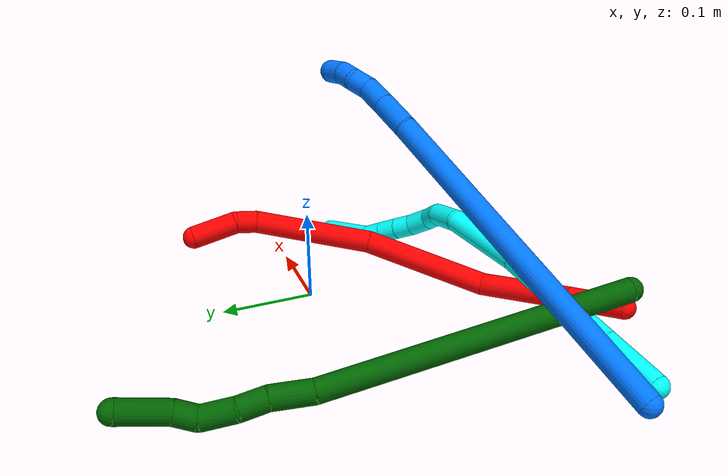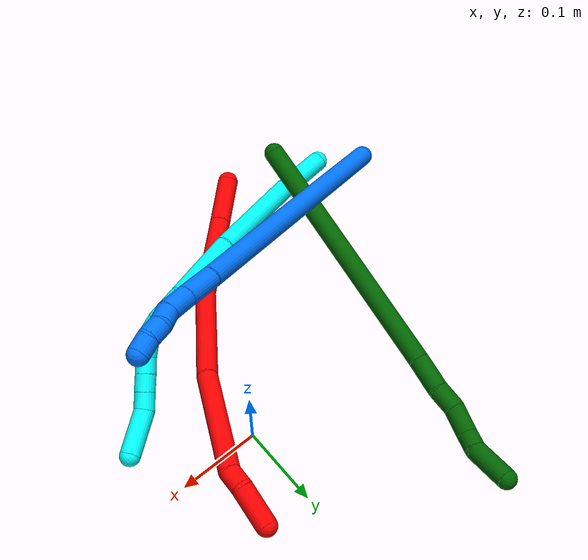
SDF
<sdf version="1.7">
 <world name="default">
  <model name="2">
   <static>0</static>
   <link name="2">
    <collision name="collision-cylinder-e_1_1_4">
     <pose>0.017904 0.017554 0.016582 -0.813855 0.637984 -0.282783</pose>
     <geometry><cylinder><radius>0.0125</radius><length>0.060122</length></cylinder></geometry>
     <surface>
      <friction><ode><mu>1.16</mu><mu2>1.16</mu2><slip1>0</slip1><slip2>0</slip2></ode></friction>
      <contact><ode><kp>1e+06</kp><kd>1</kd><max_vel>0</max_vel><min_depth>0.001</min_depth></ode></contact>
     </surface>
    </collision>
    <visual name="visual-cylinder-e_1_1_4">
     <pose>0.017904 0.017554 0.016582 -0.813855 0.637984 -0.282783</pose>
     <geometry><cylinder><radius>0.0125</radius><length>0.060122</length></cylinder></geometry>
     <material><ambient>1 0 0 1</ambient></material>
    </visual>
    <collision name="collision-cylinder-e_2_4_5">
     <pose>0.064543 0.064239 0.061764 -0.794617 0.613343 -0.26421</pose>
     <geometry><cylinder><radius>0.0125</radius><length>0.099844</length></cylinder></geometry>
     <surface>
      <friction><ode><mu>1.16</mu><mu2>1.16</mu2><slip1>0</slip1><slip2>0</slip2></ode></friction>
      <contact><ode><kp>1e+06</kp><kd>1</kd><max_vel>0</max_vel><min_depth>0.001</min_depth></ode></contact>
     </surface>
    </collision>
    <visual name="visual-cylinder-e_2_4_5">
     <pose>0.064543 0.064239 0.061764 -0.794617 0.613343 -0.26421</pose>
     <geometry><cylinder><radius>0.0125</radius><length>0.099844</length></cylinder></geometry>
     <material><ambient>1 0 0 1</ambient></material>
    </visual>
    <collision name="collision-cylinder-e_3_5_6">
     <pose>0.148338 0.13157 0.105333 -1.1973 0.930391 -0.659773</pose>
     <geometry><cylinder><radius>0.0125</radius><length>0.13733</length></cylinder></geometry>
     <surface>
      <friction><ode><mu>1.16</mu><mu2>1.16</mu2><slip1>0</slip1><slip2>0</slip2></ode></friction>
      <contact><ode><kp>1e+06</kp><kd>1</kd><max_vel>0</max_vel><min_depth>0.001</min_depth></ode></contact>
     </surface>
    </collision>
    <visual name="visual-cylinder-e_3_5_6">
     <pose>0.148338 0.13157 0.105333 -1.1973 0.930391 -0.659773</pose>
     <geometry><cylinder><radius>0.0125</radius><length>0.13733</length></cylinder></geometry>
     <material><ambient>1 0 0 1</ambient></material>
    </visual>
    <collision name="collision-cylinder-e_4_6_7">
     <pose>0.260349 0.194905 0.13913 -0.927907 1.06688 -0.574645</pose>
     <geometry><cylinder><radius>0.0125</radius><length>0.130073</length></cylinder></geometry>
     <surface>
      <friction><ode><mu>1.16</mu><mu2>1.16</mu2><slip1>0</slip1><slip2>0</slip2></ode></friction>
      <contact><ode><kp>1e+06</kp><kd>1</kd><max_vel>0</max_vel><min_depth>0.001</min_depth></ode></contact>
     </surface>
    </collision>
    <visual name="visual-cylinder-e_4_6_7">
     <pose>0.260349 0.194905 0.13913 -0.927907 1.06688 -0.574645</pose>
     <geometry><cylinder><radius>0.0125</radius><length>0.130073</length></cylinder></geometry>
     <material><ambient>1 0 0 1</ambient></material>
    </visual>
    <collision name="collision-cylinder-e_5_7_8">
     <pose>0.328868 0.22028 0.160271 -0.103925 1.37231 -0.085129</pose>
     <geometry><cylinder><radius>0.0125</radius><length>0.023595</length></cylinder></geometry>
     <surface>
      <friction><ode><mu>1.16</mu><mu2>1.16</mu2><slip1>0</slip1><slip2>0</slip2></ode></friction>
      <contact><ode><kp>1e+06</kp><kd>1</kd><max_vel>0</max_vel><min_depth>0.001</min_depth></ode></contact>
     </surface>
    </collision>
    <visual name="visual-cylinder-e_5_7_8">
     <pose>0.328868 0.22028 0.160271 -0.103925 1.37231 -0.085129</pose>
     <geometry><cylinder><radius>0.0125</radius><length>0.023595</length></cylinder></geometry>
     <material><ambient>1 0 0 1</ambient></material>
    </visual>
    <collision name="collision-cylinder-e_6_8_2">
     <pose>0.361342 0.217957 0.17513 0.201649 1.02128 0.113226</pose>
     <geometry><cylinder><radius>0.0125</radius><length>0.049035</length></cylinder></geometry>
     <surface>
      <friction><ode><mu>1.16</mu><mu2>1.16</mu2><slip1>0</slip1><slip2>0</slip2></ode></friction>
      <contact><ode><kp>1e+06</kp><kd>1</kd><max_vel>0</max_vel><min_depth>0.001</min_depth></ode></contact>
     </surface>
    </collision>
    <visual name="visual-cylinder-e_6_8_2">
     <pose>0.361342 0.217957 0.17513 0.201649 1.02128 0.113226</pose>
     <geometry><cylinder><radius>0.0125</radius><length>0.049035</length></cylinder></geometry>
     <material><ambient>1 0 0 1</ambient></material>
    </visual>
    <collision name="collision-sphere-2">
     <pose>0.382249 0.215392 0.187675 0 -0 0</pose>
     <geometry><sphere><radius>0.0125</radius></sphere></geometry>
     <surface>
      <friction><ode><mu>1.16</mu><mu2>1.16</mu2><slip1>0</slip1><slip2>0</slip2></ode></friction>
      <contact><ode><kp>1e+06</kp><kd>1</kd><max_vel>0</max_vel><min_depth>0.001</min_depth></ode></contact>
     </surface>
    </collision>
    <visual name="visual-sphere-2">
     <pose>0.382249 0.215392 0.187675 0 -0 0</pose>
     <geometry><sphere><radius>0.0125</radius></sphere></geometry>
     <material><ambient>1 0 0 1</ambient></material>
    </visual>
    <collision name="collision-sphere-4">
     <pose>0.035807 0.035108 0.033165 0 -0 0</pose>
     <geometry><sphere><radius>0.0125</radius></sphere></geometry>
     <surface>
      <friction><ode><mu>1.16</mu><mu2>1.16</mu2><slip1>0</slip1><slip2>0</slip2></ode></friction>
      <contact><ode><kp>1e+06</kp><kd>1</kd><max_vel>0</max_vel><min_depth>0.001</min_depth></ode></contact>
     </surface>
    </collision>
    <visual name="visual-sphere-4">
     <pose>0.035807 0.035108 0.033165 0 -0 0</pose>
     <geometry><sphere><radius>0.0125</radius></sphere></geometry>
     <material><ambient>1 0 0 1</ambient></material>
    </visual>
    <collision name="collision-sphere-1">
     <geometry><sphere><radius>0.0125</radius></sphere></geometry>
     <surface>
      <friction><ode><mu>1.16</mu><mu2>1.16</mu2><slip1>0</slip1><slip2>0</slip2></ode></friction>
      <contact><ode><kp>1e+06</kp><kd>1</kd><max_vel>0</max_vel><min_depth>0.001</min_depth></ode></contact>
     </surface>
    </collision>
    <visual name="visual-sphere-1">
     <geometry><sphere><radius>0.0125</radius></sphere></geometry>
     <material><ambient>1 0 0 1</ambient></material>
    </visual>
    <collision name="collision-sphere-8">
     <pose>0.340434 0.220522 0.162584 0 -0 0</pose>
     <geometry><sphere><radius>0.0125</radius></sphere></geometry>
     <surface>
      <friction><ode><mu>1.16</mu><mu2>1.16</mu2><slip1>0</slip1><slip2>0</slip2></ode></friction>
      <contact><ode><kp>1e+06</kp><kd>1</kd><max_vel>0</max_vel><min_depth>0.001</min_depth></ode></contact>
     </surface>
    </collision>
    <visual name="visual-sphere-8">
     <pose>0.340434 0.220522 0.162584 0 -0 0</pose>
     <geometry><sphere><radius>0.0125</radius></sphere></geometry>
     <material><ambient>1 0 0 1</ambient></material>
    </visual>
    <collision name="collision-sphere-5">
     <pose>0.093278 0.09337 0.090362 0 -0 0</pose>
     <geometry><sphere><radius>0.0125</radius></sphere></geometry>
     <surface>
      <friction><ode><mu>1.16</mu><mu2>1.16</mu2><slip1>0</slip1><slip2>0</slip2></ode></friction>
      <contact><ode><kp>1e+06</kp><kd>1</kd><max_vel>0</max_vel><min_depth>0.001</min_depth></ode></contact>
     </surface>
    </collision>
    <visual name="visual-sphere-5">
     <pose>0.093278 0.09337 0.090362 0 -0 0</pose>
     <geometry><sphere><radius>0.0125</radius></sphere></geometry>
     <material><ambient>1 0 0 1</ambient></material>
    </visual>
    <collision name="collision-sphere-6">
     <pose>0.203397 0.169771 0.120303 0 -0 0</pose>
     <geometry><sphere><radius>0.0125</radius></sphere></geometry>
     <surface>
      <friction><ode><mu>1.16</mu><mu2>1.16</mu2><slip1>0</slip1><slip2>0</slip2></ode></friction>
      <contact><ode><kp>1e+06</kp><kd>1</kd><max_vel>0</max_vel><min_depth>0.001</min_depth></ode></contact>
     </surface>
    </collision>
    <visual name="visual-sphere-6">
     <pose>0.203397 0.169771 0.120303 0 -0 0</pose>
     <geometry><sphere><radius>0.0125</radius></sphere></geometry>
     <material><ambient>1 0 0 1</ambient></material>
    </visual>
    <collision name="collision-sphere-7">
     <pose>0.317302 0.220039 0.157957 0 -0 0</pose>
     <geometry><sphere><radius>0.0125</radius></sphere></geometry>
     <surface>
      <friction><ode><mu>1.16</mu><mu2>1.16</mu2><slip1>0</slip1><slip2>0</slip2></ode></friction>
      <contact><ode><kp>1e+06</kp><kd>1</kd><max_vel>0</max_vel><min_depth>0.001</min_depth></ode></contact>
     </surface>
    </collision>
    <visual name="visual-sphere-7">
     <pose>0.317302 0.220039 0.157957 0 -0 0</pose>
     <geometry><sphere><radius>0.0125</radius></sphere></geometry>
     <material><ambient>1 0 0 1</ambient></material>
    </visual>
    <inertial>
     <pose>0.174469 0.13355 0.104191 0 -0 0</pose>
     <mass>0.5</mass>
     <inertia>
      <ixx>0.000149</ixx>
      <ixy>0</ixy>
      <ixz>0</ixz>
      <iyy>0.000293</iyy>
      <iyz>0</iyz>
      <izz>-0.000659</izz>
     </inertia>
    </inertial>
   </link>
   <pose>-0.189249 -0.287271 0.023207 2.67477 -0.284861 1.62058</pose>
  </model>
  <model name="3">
   <static>0</static>
   <link name="3">
    <collision name="collision-cylinder-e_1_1_4">
     <pose>0.031557 0.009699 0.00982 -0.779204 1.15847 -0.524733</pose>
     <geometry><cylinder><radius>0.0125</radius><length>0.068887</length></cylinder></geometry>
     <surface>
      <friction><ode><mu>1.16</mu><mu2>1.16</mu2><slip1>0</slip1><slip2>0</slip2></ode></friction>
      <contact><ode><kp>1e+06</kp><kd>1</kd><max_vel>0</max_vel><min_depth>0.001</min_depth></ode></contact>
     </surface>
    </collision>
    <visual name="visual-cylinder-e_1_1_4">
     <pose>0.031557 0.009699 0.00982 -0.779204 1.15847 -0.524733</pose>
     <geometry><cylinder><radius>0.0125</radius><length>0.068887</length></cylinder></geometry>
     <material><ambient>0.003922 1 0.996078 1</ambient></material>
    </visual>
    <collision name="collision-cylinder-e_2_4_5">
     <pose>0.122053 0.047101 0.037172 -1.00657 1.06318 -0.626233</pose>
     <geometry><cylinder><radius>0.0125</radius><length>0.134886</length></cylinder></geometry>
     <surface>
      <friction><ode><mu>1.16</mu><mu2>1.16</mu2><slip1>0</slip1><slip2>0</slip2></ode></friction>
      <contact><ode><kp>1e+06</kp><kd>1</kd><max_vel>0</max_vel><min_depth>0.001</min_depth></ode></contact>
     </surface>
    </collision>
    <visual name="visual-cylinder-e_2_4_5">
     <pose>0.122053 0.047101 0.037172 -1.00657 1.06318 -0.626233</pose>
     <geometry><cylinder><radius>0.0125</radius><length>0.134886</length></cylinder></geometry>
     <material><ambient>0.003922 1 0.996078 1</ambient></material>
    </visual>
    <collision name="collision-cylinder-e_3_5_6">
     <pose>0.223697 0.088868 0.062576 -1.06055 1.20993 -0.77028</pose>
     <geometry><cylinder><radius>0.0125</radius><length>0.091292</length></cylinder></geometry>
     <surface>
      <friction><ode><mu>1.16</mu><mu2>1.16</mu2><slip1>0</slip1><slip2>0</slip2></ode></friction>
      <contact><ode><kp>1e+06</kp><kd>1</kd><max_vel>0</max_vel><min_depth>0.001</min_depth></ode></contact>
     </surface>
    </collision>
    <visual name="visual-cylinder-e_3_5_6">
     <pose>0.223697 0.088868 0.062576 -1.06055 1.20993 -0.77028</pose>
     <geometry><cylinder><radius>0.0125</radius><length>0.091292</length></cylinder></geometry>
     <material><ambient>0.003922 1 0.996078 1</ambient></material>
    </visual>
    <collision name="collision-cylinder-e_4_6_7">
     <pose>0.285206 0.102331 0.071845 0.405905 1.49005 0.375148</pose>
     <geometry><cylinder><radius>0.0125</radius><length>0.037728</length></cylinder></geometry>
     <surface>
      <friction><ode><mu>1.16</mu><mu2>1.16</mu2><slip1>0</slip1><slip2>0</slip2></ode></friction>
      <contact><ode><kp>1e+06</kp><kd>1</kd><max_vel>0</max_vel><min_depth>0.001</min_depth></ode></contact>
     </surface>
    </collision>
    <visual name="visual-cylinder-e_4_6_7">
     <pose>0.285206 0.102331 0.071845 0.405905 1.49005 0.375148</pose>
     <geometry><cylinder><radius>0.0125</radius><length>0.037728</length></cylinder></geometry>
     <material><ambient>0.003922 1 0.996078 1</ambient></material>
    </visual>
    <collision name="collision-cylinder-e_5_7_8">
     <pose>0.313624 0.098136 0.071054 2.11766 1.15823 1.72178</pose>
     <geometry><cylinder><radius>0.0125</radius><length>0.020993</length></cylinder></geometry>
     <surface>
      <friction><ode><mu>1.16</mu><mu2>1.16</mu2><slip1>0</slip1><slip2>0</slip2></ode></friction>
      <contact><ode><kp>1e+06</kp><kd>1</kd><max_vel>0</max_vel><min_depth>0.001</min_depth></ode></contact>
     </surface>
    </collision>
    <visual name="visual-cylinder-e_5_7_8">
     <pose>0.313624 0.098136 0.071054 2.11766 1.15823 1.72178</pose>
     <geometry><cylinder><radius>0.0125</radius><length>0.020993</length></cylinder></geometry>
     <material><ambient>0.003922 1 0.996078 1</ambient></material>
    </visual>
    <collision name="collision-cylinder-e_6_8_9">
     <pose>0.334978 0.094437 0.062027 3.12648 1.04319 3.11529</pose>
     <geometry><cylinder><radius>0.0125</radius><length>0.027169</length></cylinder></geometry>
     <surface>
      <friction><ode><mu>1.16</mu><mu2>1.16</mu2><slip1>0</slip1><slip2>0</slip2></ode></friction>
      <contact><ode><kp>1e+06</kp><kd>1</kd><max_vel>0</max_vel><min_depth>0.001</min_depth></ode></contact>
     </surface>
    </collision>
    <visual name="visual-cylinder-e_6_8_9">
     <pose>0.334978 0.094437 0.062027 3.12648 1.04319 3.11529</pose>
     <geometry><cylinder><radius>0.0125</radius><length>0.027169</length></cylinder></geometry>
     <material><ambient>0.003922 1 0.996078 1</ambient></material>
    </visual>
    <collision name="collision-cylinder-e_7_9_10">
     <pose>0.355011 0.096285 0.049523 -2.80991 0.945261 -2.50883</pose>
     <geometry><cylinder><radius>0.0125</radius><length>0.020468</length></cylinder></geometry>
     <surface>
      <friction><ode><mu>1.16</mu><mu2>1.16</mu2><slip1>0</slip1><slip2>0</slip2></ode></friction>
      <contact><ode><kp>1e+06</kp><kd>1</kd><max_vel>0</max_vel><min_depth>0.001</min_depth></ode></contact>
     </surface>
    </collision>
    <visual name="visual-cylinder-e_7_9_10">
     <pose>0.355011 0.096285 0.049523 -2.80991 0.945261 -2.50883</pose>
     <geometry><cylinder><radius>0.0125</radius><length>0.020468</length></cylinder></geometry>
     <material><ambient>0.003922 1 0.996078 1</ambient></material>
    </visual>
    <collision name="collision-cylinder-e_8_10_11">
     <pose>0.372062 0.099974 0.038146 -2.84633 0.972353 -2.59299</pose>
     <geometry><cylinder><radius>0.0125</radius><length>0.021194</length></cylinder></geometry>
     <surface>
      <friction><ode><mu>1.16</mu><mu2>1.16</mu2><slip1>0</slip1><slip2>0</slip2></ode></friction>
      <contact><ode><kp>1e+06</kp><kd>1</kd><max_vel>0</max_vel><min_depth>0.001</min_depth></ode></contact>
     </surface>
    </collision>
    <visual name="visual-cylinder-e_8_10_11">
     <pose>0.372062 0.099974 0.038146 -2.84633 0.972353 -2.59299</pose>
     <geometry><cylinder><radius>0.0125</radius><length>0.021194</length></cylinder></geometry>
     <material><ambient>0.003922 1 0.996078 1</ambient></material>
    </visual>
    <collision name="collision-cylinder-e_9_11_12">
     <pose>0.389412 0.103582 0.026383 -2.84175 0.935672 -2.56056</pose>
     <geometry><cylinder><radius>0.0125</radius><length>0.021353</length></cylinder></geometry>
     <surface>
      <friction><ode><mu>1.16</mu><mu2>1.16</mu2><slip1>0</slip1><slip2>0</slip2></ode></friction>
      <contact><ode><kp>1e+06</kp><kd>1</kd><max_vel>0</max_vel><min_depth>0.001</min_depth></ode></contact>
     </surface>
    </collision>
    <visual name="visual-cylinder-e_9_11_12">
     <pose>0.389412 0.103582 0.026383 -2.84175 0.935672 -2.56056</pose>
     <geometry><cylinder><radius>0.0125</radius><length>0.021353</length></cylinder></geometry>
     <material><ambient>0.003922 1 0.996078 1</ambient></material>
    </visual>
    <collision name="collision-cylinder-e_10_12_2">
     <pose>0.4238 0.114179 0.013744 -2.21741 1.16985 -1.85191</pose>
     <geometry><cylinder><radius>0.0125</radius><length>0.05603</length></cylinder></geometry>
     <surface>
      <friction><ode><mu>1.16</mu><mu2>1.16</mu2><slip1>0</slip1><slip2>0</slip2></ode></friction>
      <contact><ode><kp>1e+06</kp><kd>1</kd><max_vel>0</max_vel><min_depth>0.001</min_depth></ode></contact>
     </surface>
    </collision>
    <visual name="visual-cylinder-e_10_12_2">
     <pose>0.4238 0.114179 0.013744 -2.21741 1.16985 -1.85191</pose>
     <geometry><cylinder><radius>0.0125</radius><length>0.05603</length></cylinder></geometry>
     <material><ambient>0.003922 1 0.996078 1</ambient></material>
    </visual>
    <collision name="collision-sphere-2">
     <pose>0.449593 0.122906 0.007156 0 -0 0</pose>
     <geometry><sphere><radius>0.0125</radius></sphere></geometry>
     <surface>
      <friction><ode><mu>1.16</mu><mu2>1.16</mu2><slip1>0</slip1><slip2>0</slip2></ode></friction>
      <contact><ode><kp>1e+06</kp><kd>1</kd><max_vel>0</max_vel><min_depth>0.001</min_depth></ode></contact>
     </surface>
    </collision>
    <visual name="visual-sphere-2">
     <pose>0.449593 0.122906 0.007156 0 -0 0</pose>
     <geometry><sphere><radius>0.0125</radius></sphere></geometry>
     <material><ambient>0.003922 1 0.996078 1</ambient></material>
    </visual>
    <collision name="collision-sphere-12">
     <pose>0.398006 0.105453 0.020331 0 -0 0</pose>
     <geometry><sphere><radius>0.0125</radius></sphere></geometry>
     <surface>
      <friction><ode><mu>1.16</mu><mu2>1.16</mu2><slip1>0</slip1><slip2>0</slip2></ode></friction>
      <contact><ode><kp>1e+06</kp><kd>1</kd><max_vel>0</max_vel><min_depth>0.001</min_depth></ode></contact>
     </surface>
    </collision>
    <visual name="visual-sphere-12">
     <pose>0.398006 0.105453 0.020331 0 -0 0</pose>
     <geometry><sphere><radius>0.0125</radius></sphere></geometry>
     <material><ambient>0.003922 1 0.996078 1</ambient></material>
    </visual>
    <collision name="collision-sphere-11">
     <pose>0.380817 0.101711 0.032434 0 -0 0</pose>
     <geometry><sphere><radius>0.0125</radius></sphere></geometry>
     <surface>
      <friction><ode><mu>1.16</mu><mu2>1.16</mu2><slip1>0</slip1><slip2>0</slip2></ode></friction>
      <contact><ode><kp>1e+06</kp><kd>1</kd><max_vel>0</max_vel><min_depth>0.001</min_depth></ode></contact>
     </surface>
    </collision>
    <visual name="visual-sphere-11">
     <pose>0.380817 0.101711 0.032434 0 -0 0</pose>
     <geometry><sphere><radius>0.0125</radius></sphere></geometry>
     <material><ambient>0.003922 1 0.996078 1</ambient></material>
    </visual>
    <collision name="collision-sphere-10">
     <pose>0.363307 0.098236 0.043857 0 -0 0</pose>
     <geometry><sphere><radius>0.0125</radius></sphere></geometry>
     <surface>
      <friction><ode><mu>1.16</mu><mu2>1.16</mu2><slip1>0</slip1><slip2>0</slip2></ode></friction>
      <contact><ode><kp>1e+06</kp><kd>1</kd><max_vel>0</max_vel><min_depth>0.001</min_depth></ode></contact>
     </surface>
    </collision>
    <visual name="visual-sphere-10">
     <pose>0.363307 0.098236 0.043857 0 -0 0</pose>
     <geometry><sphere><radius>0.0125</radius></sphere></geometry>
     <material><ambient>0.003922 1 0.996078 1</ambient></material>
    </visual>
    <collision name="collision-sphere-9">
     <pose>0.346715 0.094334 0.055188 0 -0 0</pose>
     <geometry><sphere><radius>0.0125</radius></sphere></geometry>
     <surface>
      <friction><ode><mu>1.16</mu><mu2>1.16</mu2><slip1>0</slip1><slip2>0</slip2></ode></friction>
      <contact><ode><kp>1e+06</kp><kd>1</kd><max_vel>0</max_vel><min_depth>0.001</min_depth></ode></contact>
     </surface>
    </collision>
    <visual name="visual-sphere-9">
     <pose>0.346715 0.094334 0.055188 0 -0 0</pose>
     <geometry><sphere><radius>0.0125</radius></sphere></geometry>
     <material><ambient>0.003922 1 0.996078 1</ambient></material>
    </visual>
    <collision name="collision-sphere-4">
     <pose>0.063114 0.019399 0.019641 0 -0 0</pose>
     <geometry><sphere><radius>0.0125</radius></sphere></geometry>
     <surface>
      <friction><ode><mu>1.16</mu><mu2>1.16</mu2><slip1>0</slip1><slip2>0</slip2></ode></friction>
      <contact><ode><kp>1e+06</kp><kd>1</kd><max_vel>0</max_vel><min_depth>0.001</min_depth></ode></contact>
     </surface>
    </collision>
    <visual name="visual-sphere-4">
     <pose>0.063114 0.019399 0.019641 0 -0 0</pose>
     <geometry><sphere><radius>0.0125</radius></sphere></geometry>
     <material><ambient>0.003922 1 0.996078 1</ambient></material>
    </visual>
    <collision name="collision-sphere-1">
     <geometry><sphere><radius>0.0125</radius></sphere></geometry>
     <surface>
      <friction><ode><mu>1.16</mu><mu2>1.16</mu2><slip1>0</slip1><slip2>0</slip2></ode></friction>
      <contact><ode><kp>1e+06</kp><kd>1</kd><max_vel>0</max_vel><min_depth>0.001</min_depth></ode></contact>
     </surface>
    </collision>
    <visual name="visual-sphere-1">
     <geometry><sphere><radius>0.0125</radius></sphere></geometry>
     <material><ambient>0.003922 1 0.996078 1</ambient></material>
    </visual>
    <collision name="collision-sphere-8">
     <pose>0.32324 0.094541 0.068866 0 -0 0</pose>
     <geometry><sphere><radius>0.0125</radius></sphere></geometry>
     <surface>
      <friction><ode><mu>1.16</mu><mu2>1.16</mu2><slip1>0</slip1><slip2>0</slip2></ode></friction>
      <contact><ode><kp>1e+06</kp><kd>1</kd><max_vel>0</max_vel><min_depth>0.001</min_depth></ode></contact>
     </surface>
    </collision>
    <visual name="visual-sphere-8">
     <pose>0.32324 0.094541 0.068866 0 -0 0</pose>
     <geometry><sphere><radius>0.0125</radius></sphere></geometry>
     <material><ambient>0.003922 1 0.996078 1</ambient></material>
    </visual>
    <collision name="collision-sphere-5">
     <pose>0.180991 0.074804 0.054704 0 -0 0</pose>
     <geometry><sphere><radius>0.0125</radius></sphere></geometry>
     <surface>
      <friction><ode><mu>1.16</mu><mu2>1.16</mu2><slip1>0</slip1><slip2>0</slip2></ode></friction>
      <contact><ode><kp>1e+06</kp><kd>1</kd><max_vel>0</max_vel><min_depth>0.001</min_depth></ode></contact>
     </surface>
    </collision>
    <visual name="visual-sphere-5">
     <pose>0.180991 0.074804 0.054704 0 -0 0</pose>
     <geometry><sphere><radius>0.0125</radius></sphere></geometry>
     <material><ambient>0.003922 1 0.996078 1</ambient></material>
    </visual>
    <collision name="collision-sphere-6">
     <pose>0.266403 0.102932 0.070447 0 -0 0</pose>
     <geometry><sphere><radius>0.0125</radius></sphere></geometry>
     <surface>
      <friction><ode><mu>1.16</mu><mu2>1.16</mu2><slip1>0</slip1><slip2>0</slip2></ode></friction>
      <contact><ode><kp>1e+06</kp><kd>1</kd><max_vel>0</max_vel><min_depth>0.001</min_depth></ode></contact>
     </surface>
    </collision>
    <visual name="visual-sphere-6">
     <pose>0.266403 0.102932 0.070447 0 -0 0</pose>
     <geometry><sphere><radius>0.0125</radius></sphere></geometry>
     <material><ambient>0.003922 1 0.996078 1</ambient></material>
    </visual>
    <collision name="collision-sphere-7">
     <pose>0.304008 0.101731 0.073243 0 -0 0</pose>
     <geometry><sphere><radius>0.0125</radius></sphere></geometry>
     <surface>
      <friction><ode><mu>1.16</mu><mu2>1.16</mu2><slip1>0</slip1><slip2>0</slip2></ode></friction>
      <contact><ode><kp>1e+06</kp><kd>1</kd><max_vel>0</max_vel><min_depth>0.001</min_depth></ode></contact>
     </surface>
    </collision>
    <visual name="visual-sphere-7">
     <pose>0.304008 0.101731 0.073243 0 -0 0</pose>
     <geometry><sphere><radius>0.0125</radius></sphere></geometry>
     <material><ambient>0.003922 1 0.996078 1</ambient></material>
    </visual>
    <inertial>
     <pose>0.225433 0.07264 0.040892 0 -0 0</pose>
     <mass>0.5</mass>
     <inertia>
      <ixx>5.1e-05</ixx>
      <ixy>0</ixy>
      <ixz>0</ixz>
      <iyy>0.000221</iyy>
      <iyz>0</iyz>
      <izz>-0.000423</izz>
     </inertia>
    </inertial>
   </link>
   <pose>-0.304177 -0.244286 0.011485 0.871167 0.215965 0.232293</pose>
  </model>
  <model name="6">
   <static>0</static>
   <link name="6">
    <collision name="collision-cylinder-e_1_1_4">
     <pose>-0.033714 0.124825 -0.092278 -2.20739 -0.213866 0.419428</pose>
     <geometry><cylinder><radius>0.0125</radius><length>0.317699</length></cylinder></geometry>
     <surface>
      <friction><ode><mu>1.16</mu><mu2>1.16</mu2><slip1>0</slip1><slip2>0</slip2></ode></friction>
      <contact><ode><kp>1e+06</kp><kd>1</kd><max_vel>0</max_vel><min_depth>0.001</min_depth></ode></contact>
     </surface>
    </collision>
    <visual name="visual-cylinder-e_1_1_4">
     <pose>-0.033714 0.124825 -0.092278 -2.20739 -0.213866 0.419428</pose>
     <geometry><cylinder><radius>0.0125</radius><length>0.317699</length></cylinder></geometry>
     <material><ambient>0 0.392157 0.003922 1</ambient></material>
    </visual>
    <collision name="collision-cylinder-e_2_4_5">
     <pose>-0.074068 0.267415 -0.19426 -2.07075 -0.316965 0.526329</pose>
     <geometry><cylinder><radius>0.0125</radius><length>0.042607</length></cylinder></geometry>
     <surface>
      <friction><ode><mu>1.16</mu><mu2>1.16</mu2><slip1>0</slip1><slip2>0</slip2></ode></friction>
      <contact><ode><kp>1e+06</kp><kd>1</kd><max_vel>0</max_vel><min_depth>0.001</min_depth></ode></contact>
     </surface>
    </collision>
    <visual name="visual-cylinder-e_2_4_5">
     <pose>-0.074068 0.267415 -0.19426 -2.07075 -0.316965 0.526329</pose>
     <geometry><cylinder><radius>0.0125</radius><length>0.042607</length></cylinder></geometry>
     <material><ambient>0 0.392157 0.003922 1</ambient></material>
    </visual>
    <collision name="collision-cylinder-e_3_5_6">
     <pose>-0.084673 0.295607 -0.213134 -2.29214 -0.27811 0.60024</pose>
     <geometry><cylinder><radius>0.0125</radius><length>0.028882</length></cylinder></geometry>
     <surface>
      <friction><ode><mu>1.16</mu><mu2>1.16</mu2><slip1>0</slip1><slip2>0</slip2></ode></friction>
      <contact><ode><kp>1e+06</kp><kd>1</kd><max_vel>0</max_vel><min_depth>0.001</min_depth></ode></contact>
     </surface>
    </collision>
    <visual name="visual-cylinder-e_3_5_6">
     <pose>-0.084673 0.295607 -0.213134 -2.29214 -0.27811 0.60024</pose>
     <geometry><cylinder><radius>0.0125</radius><length>0.028882</length></cylinder></geometry>
     <material><ambient>0 0.392157 0.003922 1</ambient></material>
    </visual>
    <collision name="collision-cylinder-e_4_6_7">
     <pose>-0.091116 0.321203 -0.230603 -2.0714 -0.142378 0.239441</pose>
     <geometry><cylinder><radius>0.0125</radius><length>0.034935</length></cylinder></geometry>
     <surface>
      <friction><ode><mu>1.16</mu><mu2>1.16</mu2><slip1>0</slip1><slip2>0</slip2></ode></friction>
      <contact><ode><kp>1e+06</kp><kd>1</kd><max_vel>0</max_vel><min_depth>0.001</min_depth></ode></contact>
     </surface>
    </collision>
    <visual name="visual-cylinder-e_4_6_7">
     <pose>-0.091116 0.321203 -0.230603 -2.0714 -0.142378 0.239441</pose>
     <geometry><cylinder><radius>0.0125</radius><length>0.034935</length></cylinder></geometry>
     <material><ambient>0 0.392157 0.003922 1</ambient></material>
    </visual>
    <collision name="collision-cylinder-e_5_7_8">
     <pose>-0.099535 0.346727 -0.240396 -1.71413 -0.516373 0.591945</pose>
     <geometry><cylinder><radius>0.0125</radius><length>0.024062</length></cylinder></geometry>
     <surface>
      <friction><ode><mu>1.16</mu><mu2>1.16</mu2><slip1>0</slip1><slip2>0</slip2></ode></friction>
      <contact><ode><kp>1e+06</kp><kd>1</kd><max_vel>0</max_vel><min_depth>0.001</min_depth></ode></contact>
     </surface>
    </collision>
    <visual name="visual-cylinder-e_5_7_8">
     <pose>-0.099535 0.346727 -0.240396 -1.71413 -0.516373 0.591945</pose>
     <geometry><cylinder><radius>0.0125</radius><length>0.024062</length></cylinder></geometry>
     <material><ambient>0 0.392157 0.003922 1</ambient></material>
    </visual>
    <collision name="collision-cylinder-e_6_8_2">
     <pose>-0.120932 0.375298 -0.251913 -2.0738 -0.639297 1.02085</pose>
     <geometry><cylinder><radius>0.0125</radius><length>0.051815</length></cylinder></geometry>
     <surface>
      <friction><ode><mu>1.16</mu><mu2>1.16</mu2><slip1>0</slip1><slip2>0</slip2></ode></friction>
      <contact><ode><kp>1e+06</kp><kd>1</kd><max_vel>0</max_vel><min_depth>0.001</min_depth></ode></contact>
     </surface>
    </collision>
    <visual name="visual-cylinder-e_6_8_2">
     <pose>-0.120932 0.375298 -0.251913 -2.0738 -0.639297 1.02085</pose>
     <geometry><cylinder><radius>0.0125</radius><length>0.051815</length></cylinder></geometry>
     <material><ambient>0 0.392157 0.003922 1</ambient></material>
    </visual>
    <collision name="collision-sphere-2">
     <pose>-0.136389 0.393514 -0.261936 0 -0 0</pose>
     <geometry><sphere><radius>0.0125</radius></sphere></geometry>
     <surface>
      <friction><ode><mu>1.16</mu><mu2>1.16</mu2><slip1>0</slip1><slip2>0</slip2></ode></friction>
      <contact><ode><kp>1e+06</kp><kd>1</kd><max_vel>0</max_vel><min_depth>0.001</min_depth></ode></contact>
     </surface>
    </collision>
    <visual name="visual-sphere-2">
     <pose>-0.136389 0.393514 -0.261936 0 -0 0</pose>
     <geometry><sphere><radius>0.0125</radius></sphere></geometry>
     <material><ambient>0 0.392157 0.003922 1</ambient></material>
    </visual>
    <collision name="collision-sphere-4">
     <pose>-0.067428 0.24965 -0.184557 0 -0 0</pose>
     <geometry><sphere><radius>0.0125</radius></sphere></geometry>
     <surface>
      <friction><ode><mu>1.16</mu><mu2>1.16</mu2><slip1>0</slip1><slip2>0</slip2></ode></friction>
      <contact><ode><kp>1e+06</kp><kd>1</kd><max_vel>0</max_vel><min_depth>0.001</min_depth></ode></contact>
     </surface>
    </collision>
    <visual name="visual-sphere-4">
     <pose>-0.067428 0.24965 -0.184557 0 -0 0</pose>
     <geometry><sphere><radius>0.0125</radius></sphere></geometry>
     <material><ambient>0 0.392157 0.003922 1</ambient></material>
    </visual>
    <collision name="collision-sphere-1">
     <geometry><sphere><radius>0.0125</radius></sphere></geometry>
     <surface>
      <friction><ode><mu>1.16</mu><mu2>1.16</mu2><slip1>0</slip1><slip2>0</slip2></ode></friction>
      <contact><ode><kp>1e+06</kp><kd>1</kd><max_vel>0</max_vel><min_depth>0.001</min_depth></ode></contact>
     </surface>
    </collision>
    <visual name="visual-sphere-1">
     <geometry><sphere><radius>0.0125</radius></sphere></geometry>
     <material><ambient>0 0.392157 0.003922 1</ambient></material>
    </visual>
    <collision name="collision-sphere-8">
     <pose>-0.105475 0.357082 -0.241891 0 -0 0</pose>
     <geometry><sphere><radius>0.0125</radius></sphere></geometry>
     <surface>
      <friction><ode><mu>1.16</mu><mu2>1.16</mu2><slip1>0</slip1><slip2>0</slip2></ode></friction>
      <contact><ode><kp>1e+06</kp><kd>1</kd><max_vel>0</max_vel><min_depth>0.001</min_depth></ode></contact>
     </surface>
    </collision>
    <visual name="visual-sphere-8">
     <pose>-0.105475 0.357082 -0.241891 0 -0 0</pose>
     <geometry><sphere><radius>0.0125</radius></sphere></geometry>
     <material><ambient>0 0.392157 0.003922 1</ambient></material>
    </visual>
    <collision name="collision-sphere-5">
     <pose>-0.080708 0.285179 -0.203964 0 -0 0</pose>
     <geometry><sphere><radius>0.0125</radius></sphere></geometry>
     <surface>
      <friction><ode><mu>1.16</mu><mu2>1.16</mu2><slip1>0</slip1><slip2>0</slip2></ode></friction>
      <contact><ode><kp>1e+06</kp><kd>1</kd><max_vel>0</max_vel><min_depth>0.001</min_depth></ode></contact>
     </surface>
    </collision>
    <visual name="visual-sphere-5">
     <pose>-0.080708 0.285179 -0.203964 0 -0 0</pose>
     <geometry><sphere><radius>0.0125</radius></sphere></geometry>
     <material><ambient>0 0.392157 0.003922 1</ambient></material>
    </visual>
    <collision name="collision-sphere-6">
     <pose>-0.088637 0.306034 -0.222304 0 -0 0</pose>
     <geometry><sphere><radius>0.0125</radius></sphere></geometry>
     <surface>
      <friction><ode><mu>1.16</mu><mu2>1.16</mu2><slip1>0</slip1><slip2>0</slip2></ode></friction>
      <contact><ode><kp>1e+06</kp><kd>1</kd><max_vel>0</max_vel><min_depth>0.001</min_depth></ode></contact>
     </surface>
    </collision>
    <visual name="visual-sphere-6">
     <pose>-0.088637 0.306034 -0.222304 0 -0 0</pose>
     <geometry><sphere><radius>0.0125</radius></sphere></geometry>
     <material><ambient>0 0.392157 0.003922 1</ambient></material>
    </visual>
    <collision name="collision-sphere-7">
     <pose>-0.093594 0.336372 -0.238902 0 -0 0</pose>
     <geometry><sphere><radius>0.0125</radius></sphere></geometry>
     <surface>
      <friction><ode><mu>1.16</mu><mu2>1.16</mu2><slip1>0</slip1><slip2>0</slip2></ode></friction>
      <contact><ode><kp>1e+06</kp><kd>1</kd><max_vel>0</max_vel><min_depth>0.001</min_depth></ode></contact>
     </surface>
    </collision>
    <visual name="visual-sphere-7">
     <pose>-0.093594 0.336372 -0.238902 0 -0 0</pose>
     <geometry><sphere><radius>0.0125</radius></sphere></geometry>
     <material><ambient>0 0.392157 0.003922 1</ambient></material>
    </visual>
    <inertial>
     <pose>-0.056313 0.197197 -0.141285 0 -0 0</pose>
     <mass>0.5</mass>
     <inertia>
      <ixx>0.003492</ixx>
      <ixy>0</ixy>
      <ixz>0</ixz>
      <iyy>-0.000158</iyy>
      <iyz>0</iyz>
      <izz>-0.001572</izz>
     </inertia>
    </inertial>
   </link>
   <pose>-0.23922 -0.251532 0.079772 -0.129481 1.01573 -0.881114</pose>
  </model>
  <model name="14">
   <static>0</static>
   <link name="14">
    <collision name="collision-cylinder-e_1_1_4">
     <pose>0.155871 0.054112 0.080354 -0.592659 1.01471 -0.336245</pose>
     <geometry><cylinder><radius>0.0125</radius><length>0.367046</length></cylinder></geometry>
     <surface>
      <friction><ode><mu>1.16</mu><mu2>1.16</mu2><slip1>0</slip1><slip2>0</slip2></ode></friction>
      <contact><ode><kp>1e+06</kp><kd>1</kd><max_vel>0</max_vel><min_depth>0.001</min_depth></ode></contact>
     </surface>
    </collision>
    <visual name="visual-cylinder-e_1_1_4">
     <pose>0.155871 0.054112 0.080354 -0.592659 1.01471 -0.336245</pose>
     <geometry><cylinder><radius>0.0125</radius><length>0.367046</length></cylinder></geometry>
     <material><ambient>0 0.462745 1 1</ambient></material>
    </visual>
    <collision name="collision-cylinder-e_2_4_5">
     <pose>0.330673 0.113091 0.167647 -0.611766 1.14981 -0.403643</pose>
     <geometry><cylinder><radius>0.0125</radius><length>0.041483</length></cylinder></geometry>
     <surface>
      <friction><ode><mu>1.16</mu><mu2>1.16</mu2><slip1>0</slip1><slip2>0</slip2></ode></friction>
      <contact><ode><kp>1e+06</kp><kd>1</kd><max_vel>0</max_vel><min_depth>0.001</min_depth></ode></contact>
     </surface>
    </collision>
    <visual name="visual-cylinder-e_2_4_5">
     <pose>0.330673 0.113091 0.167647 -0.611766 1.14981 -0.403643</pose>
     <geometry><cylinder><radius>0.0125</radius><length>0.041483</length></cylinder></geometry>
     <material><ambient>0 0.462745 1 1</ambient></material>
    </visual>
    <collision name="collision-cylinder-e_3_5_6">
     <pose>0.363719 0.121863 0.179624 -0.659223 1.14671 -0.434801</pose>
     <geometry><cylinder><radius>0.0125</radius><length>0.030976</length></cylinder></geometry>
     <surface>
      <friction><ode><mu>1.16</mu><mu2>1.16</mu2><slip1>0</slip1><slip2>0</slip2></ode></friction>
      <contact><ode><kp>1e+06</kp><kd>1</kd><max_vel>0</max_vel><min_depth>0.001</min_depth></ode></contact>
     </surface>
    </collision>
    <visual name="visual-cylinder-e_3_5_6">
     <pose>0.363719 0.121863 0.179624 -0.659223 1.14671 -0.434801</pose>
     <geometry><cylinder><radius>0.0125</radius><length>0.030976</length></cylinder></geometry>
     <material><ambient>0 0.462745 1 1</ambient></material>
    </visual>
    <collision name="collision-cylinder-e_4_6_7">
     <pose>0.385651 0.131434 0.18779 -1.06643 0.879108 -0.541476</pose>
     <geometry><cylinder><radius>0.0125</radius><length>0.020298</length></cylinder></geometry>
     <surface>
      <friction><ode><mu>1.16</mu><mu2>1.16</mu2><slip1>0</slip1><slip2>0</slip2></ode></friction>
      <contact><ode><kp>1e+06</kp><kd>1</kd><max_vel>0</max_vel><min_depth>0.001</min_depth></ode></contact>
     </surface>
    </collision>
    <visual name="visual-cylinder-e_4_6_7">
     <pose>0.385651 0.131434 0.18779 -1.06643 0.879108 -0.541476</pose>
     <geometry><cylinder><radius>0.0125</radius><length>0.020298</length></cylinder></geometry>
     <material><ambient>0 0.462745 1 1</ambient></material>
    </visual>
    <collision name="collision-cylinder-e_5_7_8">
     <pose>0.402948 0.14006 0.19221 -1.15935 1.24252 -0.876496</pose>
     <geometry><cylinder><radius>0.0125</radius><length>0.020029</length></cylinder></geometry>
     <surface>
      <friction><ode><mu>1.16</mu><mu2>1.16</mu2><slip1>0</slip1><slip2>0</slip2></ode></friction>
      <contact><ode><kp>1e+06</kp><kd>1</kd><max_vel>0</max_vel><min_depth>0.001</min_depth></ode></contact>
     </surface>
    </collision>
    <visual name="visual-cylinder-e_5_7_8">
     <pose>0.402948 0.14006 0.19221 -1.15935 1.24252 -0.876496</pose>
     <geometry><cylinder><radius>0.0125</radius><length>0.020029</length></cylinder></geometry>
     <material><ambient>0 0.462745 1 1</ambient></material>
    </visual>
    <collision name="collision-cylinder-e_6_8_2">
     <pose>0.421656 0.14691 0.19232 -1.8656 1.15583 -1.44289</pose>
     <geometry><cylinder><radius>0.0125</radius><length>0.020168</length></cylinder></geometry>
     <surface>
      <friction><ode><mu>1.16</mu><mu2>1.16</mu2><slip1>0</slip1><slip2>0</slip2></ode></friction>
      <contact><ode><kp>1e+06</kp><kd>1</kd><max_vel>0</max_vel><min_depth>0.001</min_depth></ode></contact>
     </surface>
    </collision>
    <visual name="visual-cylinder-e_6_8_2">
     <pose>0.421656 0.14691 0.19232 -1.8656 1.15583 -1.44289</pose>
     <geometry><cylinder><radius>0.0125</radius><length>0.020168</length></cylinder></geometry>
     <material><ambient>0 0.462745 1 1</ambient></material>
    </visual>
    <collision name="collision-sphere-2">
     <pose>0.430884 0.1508 0.191138 0 -0 0</pose>
     <geometry><sphere><radius>0.0125</radius></sphere></geometry>
     <surface>
      <friction><ode><mu>1.16</mu><mu2>1.16</mu2><slip1>0</slip1><slip2>0</slip2></ode></friction>
      <contact><ode><kp>1e+06</kp><kd>1</kd><max_vel>0</max_vel><min_depth>0.001</min_depth></ode></contact>
     </surface>
    </collision>
    <visual name="visual-sphere-2">
     <pose>0.430884 0.1508 0.191138 0 -0 0</pose>
     <geometry><sphere><radius>0.0125</radius></sphere></geometry>
     <material><ambient>0 0.462745 1 1</ambient></material>
    </visual>
    <collision name="collision-sphere-4">
     <pose>0.311742 0.108223 0.160708 0 -0 0</pose>
     <geometry><sphere><radius>0.0125</radius></sphere></geometry>
     <surface>
      <friction><ode><mu>1.16</mu><mu2>1.16</mu2><slip1>0</slip1><slip2>0</slip2></ode></friction>
      <contact><ode><kp>1e+06</kp><kd>1</kd><max_vel>0</max_vel><min_depth>0.001</min_depth></ode></contact>
     </surface>
    </collision>
    <visual name="visual-sphere-4">
     <pose>0.311742 0.108223 0.160708 0 -0 0</pose>
     <geometry><sphere><radius>0.0125</radius></sphere></geometry>
     <material><ambient>0 0.462745 1 1</ambient></material>
    </visual>
    <collision name="collision-sphere-1">
     <geometry><sphere><radius>0.0125</radius></sphere></geometry>
     <surface>
      <friction><ode><mu>1.16</mu><mu2>1.16</mu2><slip1>0</slip1><slip2>0</slip2></ode></friction>
      <contact><ode><kp>1e+06</kp><kd>1</kd><max_vel>0</max_vel><min_depth>0.001</min_depth></ode></contact>
     </surface>
    </collision>
    <visual name="visual-sphere-1">
     <geometry><sphere><radius>0.0125</radius></sphere></geometry>
     <material><ambient>0 0.462745 1 1</ambient></material>
    </visual>
    <collision name="collision-sphere-8">
     <pose>0.412428 0.14302 0.193501 0 -0 0</pose>
     <geometry><sphere><radius>0.0125</radius></sphere></geometry>
     <surface>
      <friction><ode><mu>1.16</mu><mu2>1.16</mu2><slip1>0</slip1><slip2>0</slip2></ode></friction>
      <contact><ode><kp>1e+06</kp><kd>1</kd><max_vel>0</max_vel><min_depth>0.001</min_depth></ode></contact>
     </surface>
    </collision>
    <visual name="visual-sphere-8">
     <pose>0.412428 0.14302 0.193501 0 -0 0</pose>
     <geometry><sphere><radius>0.0125</radius></sphere></geometry>
     <material><ambient>0 0.462745 1 1</ambient></material>
    </visual>
    <collision name="collision-sphere-5">
     <pose>0.349603 0.117959 0.174586 0 -0 0</pose>
     <geometry><sphere><radius>0.0125</radius></sphere></geometry>
     <surface>
      <friction><ode><mu>1.16</mu><mu2>1.16</mu2><slip1>0</slip1><slip2>0</slip2></ode></friction>
      <contact><ode><kp>1e+06</kp><kd>1</kd><max_vel>0</max_vel><min_depth>0.001</min_depth></ode></contact>
     </surface>
    </collision>
    <visual name="visual-sphere-5">
     <pose>0.349603 0.117959 0.174586 0 -0 0</pose>
     <geometry><sphere><radius>0.0125</radius></sphere></geometry>
     <material><ambient>0 0.462745 1 1</ambient></material>
    </visual>
    <collision name="collision-sphere-6">
     <pose>0.377835 0.125766 0.184662 0 -0 0</pose>
     <geometry><sphere><radius>0.0125</radius></sphere></geometry>
     <surface>
      <friction><ode><mu>1.16</mu><mu2>1.16</mu2><slip1>0</slip1><slip2>0</slip2></ode></friction>
      <contact><ode><kp>1e+06</kp><kd>1</kd><max_vel>0</max_vel><min_depth>0.001</min_depth></ode></contact>
     </surface>
    </collision>
    <visual name="visual-sphere-6">
     <pose>0.377835 0.125766 0.184662 0 -0 0</pose>
     <geometry><sphere><radius>0.0125</radius></sphere></geometry>
     <material><ambient>0 0.462745 1 1</ambient></material>
    </visual>
    <collision name="collision-sphere-7">
     <pose>0.393468 0.137101 0.190918 0 -0 0</pose>
     <geometry><sphere><radius>0.0125</radius></sphere></geometry>
     <surface>
      <friction><ode><mu>1.16</mu><mu2>1.16</mu2><slip1>0</slip1><slip2>0</slip2></ode></friction>
      <contact><ode><kp>1e+06</kp><kd>1</kd><max_vel>0</max_vel><min_depth>0.001</min_depth></ode></contact>
     </surface>
    </collision>
    <visual name="visual-sphere-7">
     <pose>0.393468 0.137101 0.190918 0 -0 0</pose>
     <geometry><sphere><radius>0.0125</radius></sphere></geometry>
     <material><ambient>0 0.462745 1 1</ambient></material>
    </visual>
    <inertial>
     <pose>0.213197 0.073527 0.107105 0 -0 0</pose>
     <mass>0.5</mass>
     <inertia>
      <ixx>0.001376</ixx>
      <ixy>0</ixy>
      <ixz>0</ixz>
      <iyy>0.003188</iyy>
      <iyz>0</iyz>
      <izz>-0.004735</izz>
     </inertia>
    </inertial>
   </link>
   <pose>-0.344879 -0.202549 0.031576 0.01303 -0.013052 -0.016238</pose>
  </model>
 </world>
</sdf>
